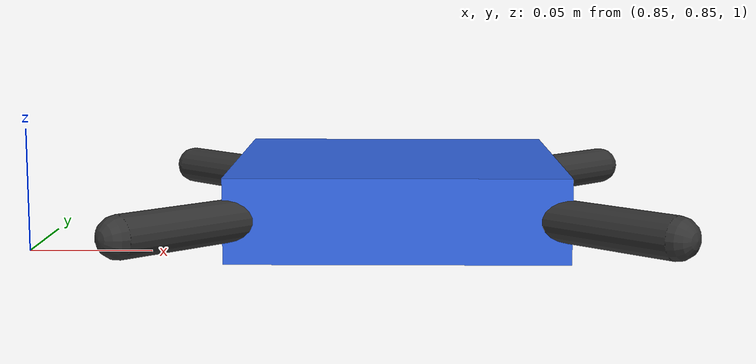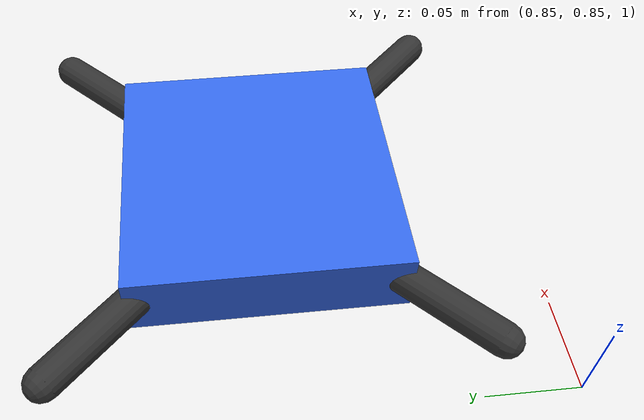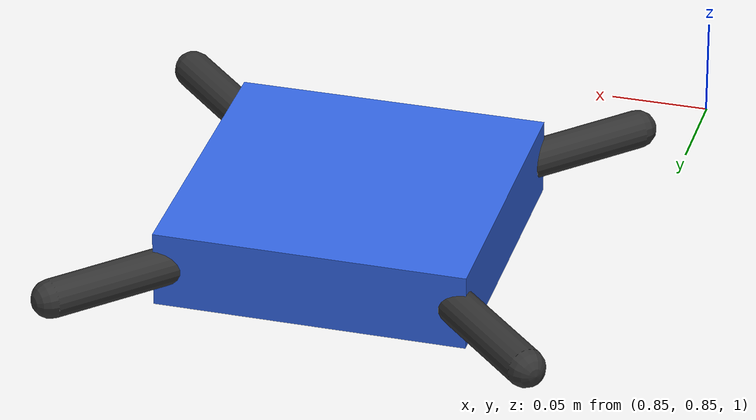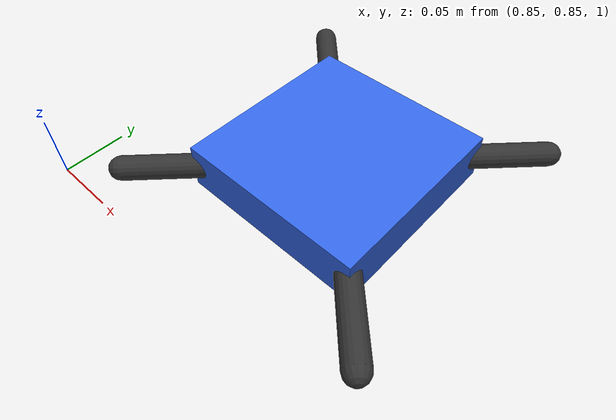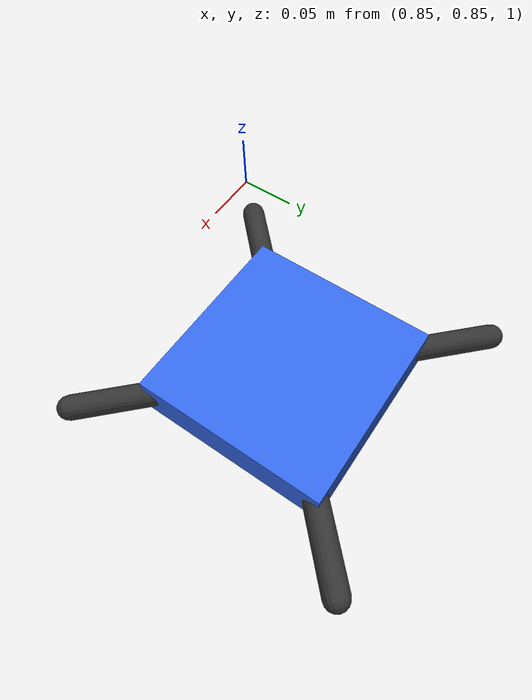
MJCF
<mujoco model="ga_stt_validation_quad">
  <compiler angle="radian"/>
  <option timestep="0.002" gravity="0 0 -9.81" integrator="RK4"/>
  <worldbody>
    <light diffuse=".6 .6 .6" pos="0 0 6" dir="0 0 -1"/>
    <geom type="plane" size="10 10 0.1" rgba="0.8 0.8 0.8 1"/>
    <body name="drone" pos="1 1 1">
      <freejoint name="root"/>
      <inertial pos="0 0 0" mass="0.5" diaginertia="3.0e-3 3.0e-3 5.5e-3"/>
      <geom name="body_geom" type="box" size="0.08 0.08 0.02" rgba="0.2 0.4 0.9 1"/>
      <geom name="arm1" type="capsule" fromto="0 0 0  0.12 0.12 0" size="0.01" rgba="0.2 0.2 0.2 1"/>
      <geom name="arm2" type="capsule" fromto="0 0 0 -0.12 0.12 0" size="0.01" rgba="0.2 0.2 0.2 1"/>
      <geom name="arm3" type="capsule" fromto="0 0 0  0.12 -0.12 0" size="0.01" rgba="0.2 0.2 0.2 1"/>
      <geom name="arm4" type="capsule" fromto="0 0 0 -0.12 -0.12 0" size="0.01" rgba="0.2 0.2 0.2 1"/>
    </body>
  </worldbody>
</mujoco>
